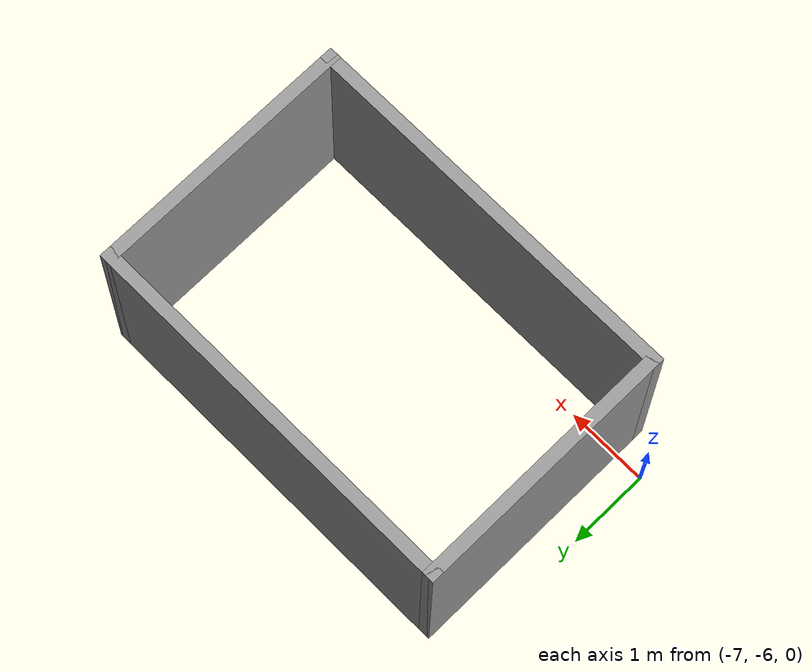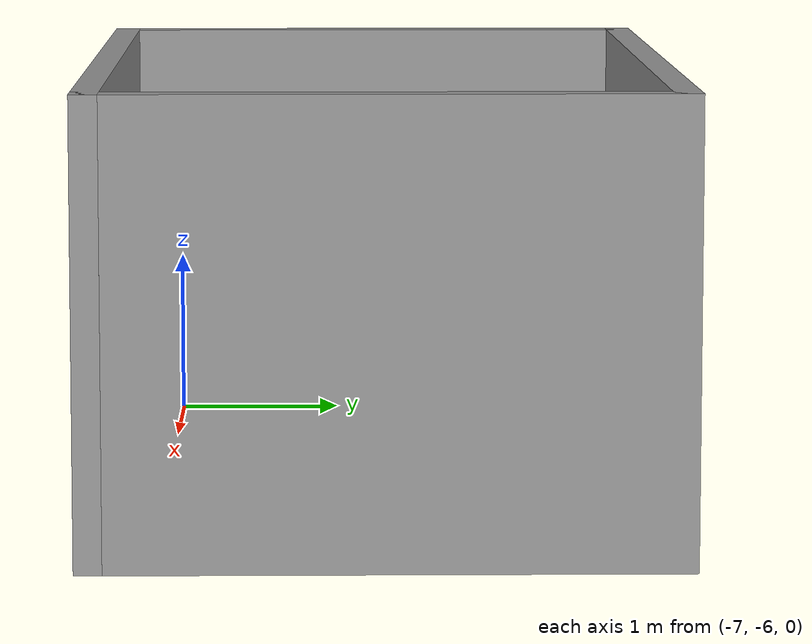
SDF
<?xml version='1.0'?>
<sdf version='1.7'>
  <model name='room2'>
    <pose>-3.3225 -3.1975 0 0 -0 0</pose>
    <link name='Wall_0'>
      <collision name='Wall_0_Collision'>
        <geometry>
          <box>
            <size>4.75 0.15 2.5</size>
          </box>
        </geometry>
        <pose>0 0 1.25 0 -0 0</pose>
      </collision>
      <visual name='Wall_0_Visual'>
        <pose>0 0 1.25 0 -0 0</pose>
        <geometry>
          <box>
            <size>4.75 0.15 2.5</size>
          </box>
        </geometry>
        <material>
          <script>
            <uri>file://media/materials/scripts/gazebo.material</uri>
            <name>Gazebo/Grey</name>
          </script>
          <ambient>1 1 1 1</ambient>
        </material>
        <meta>
          <layer>0</layer>
        </meta>
      </visual>
      <pose>-0.9475 -0.0225 0 0 -0 0</pose>
    </link>
    <link name='Wall_1'>
      <collision name='Wall_1_Collision'>
        <geometry>
          <box>
            <size>3.25 0.15 2.5</size>
          </box>
        </geometry>
        <pose>0 0 1.25 0 -0 0</pose>
      </collision>
      <visual name='Wall_1_Visual'>
        <pose>0 0 1.25 0 -0 0</pose>
        <geometry>
          <box>
            <size>3.25 0.15 2.5</size>
          </box>
        </geometry>
        <material>
          <script>
            <uri>file://media/materials/scripts/gazebo.material</uri>
            <name>Gazebo/Grey</name>
          </script>
          <ambient>1 1 1 1</ambient>
        </material>
        <meta>
          <layer>0</layer>
        </meta>
      </visual>
      <pose>1.3525 -1.5725 0 0 -0 -1.5708</pose>
    </link>
    <link name='Wall_2'>
      <collision name='Wall_2_Collision'>
        <geometry>
          <box>
            <size>4.75 0.15 2.5</size>
          </box>
        </geometry>
        <pose>0 0 1.25 0 -0 0</pose>
      </collision>
      <visual name='Wall_2_Visual'>
        <pose>0 0 1.25 0 -0 0</pose>
        <geometry>
          <box>
            <size>4.75 0.15 2.5</size>
          </box>
        </geometry>
        <material>
          <script>
            <uri>file://media/materials/scripts/gazebo.material</uri>
            <name>Gazebo/Grey</name>
          </script>
          <ambient>1 1 1 1</ambient>
        </material>
        <meta>
          <layer>0</layer>
        </meta>
      </visual>
      <pose>-0.9475 -3.1225 0 0 -0 3.14159</pose>
    </link>
    <link name='Wall_3'>
      <collision name='Wall_3_Collision'>
        <geometry>
          <box>
            <size>3.25 0.15 2.5</size>
          </box>
        </geometry>
        <pose>0 0 1.25 0 -0 0</pose>
      </collision>
      <visual name='Wall_3_Visual'>
        <pose>0 0 1.25 0 -0 0</pose>
        <geometry>
          <box>
            <size>3.25 0.15 2.5</size>
          </box>
        </geometry>
        <material>
          <script>
            <uri>file://media/materials/scripts/gazebo.material</uri>
            <name>Gazebo/Grey</name>
          </script>
          <ambient>1 1 1 1</ambient>
        </material>
        <meta>
          <layer>0</layer>
        </meta>
      </visual>
      <pose>-3.2475 -1.5725 0 0 -0 1.5708</pose>
    </link>
    <static>1</static>
  </model>
</sdf>
